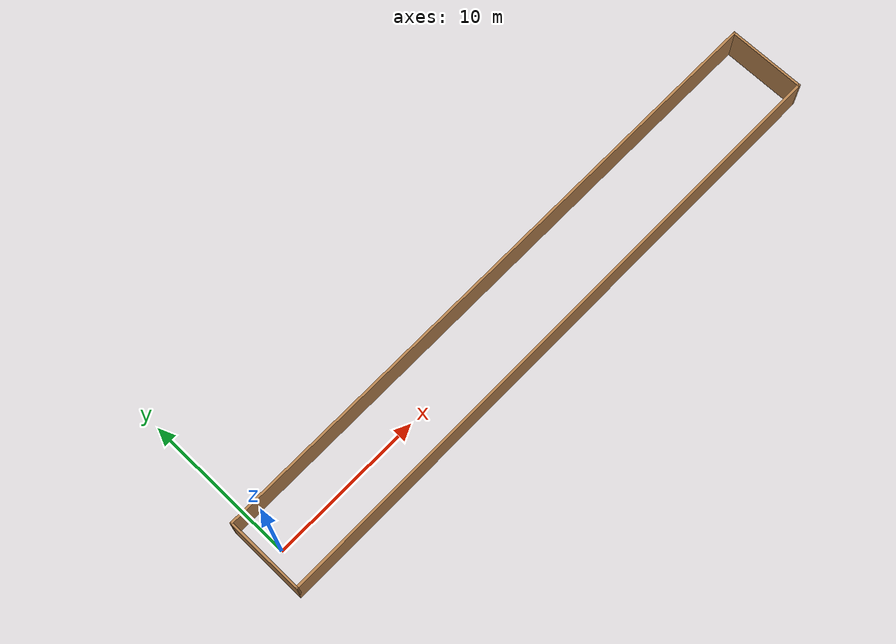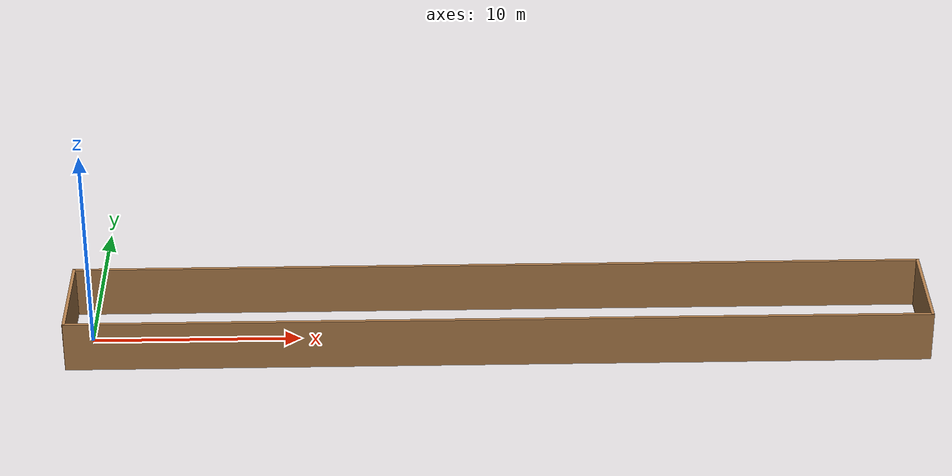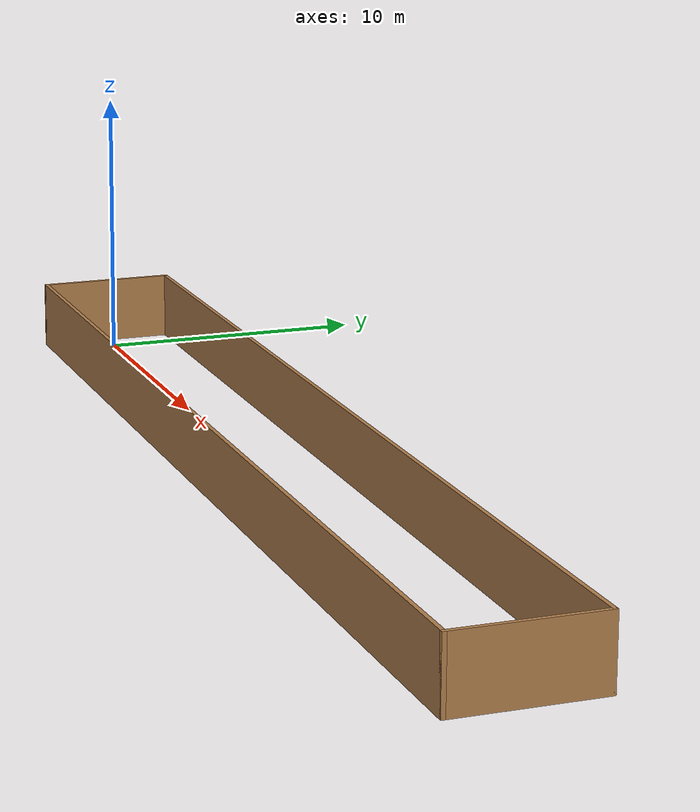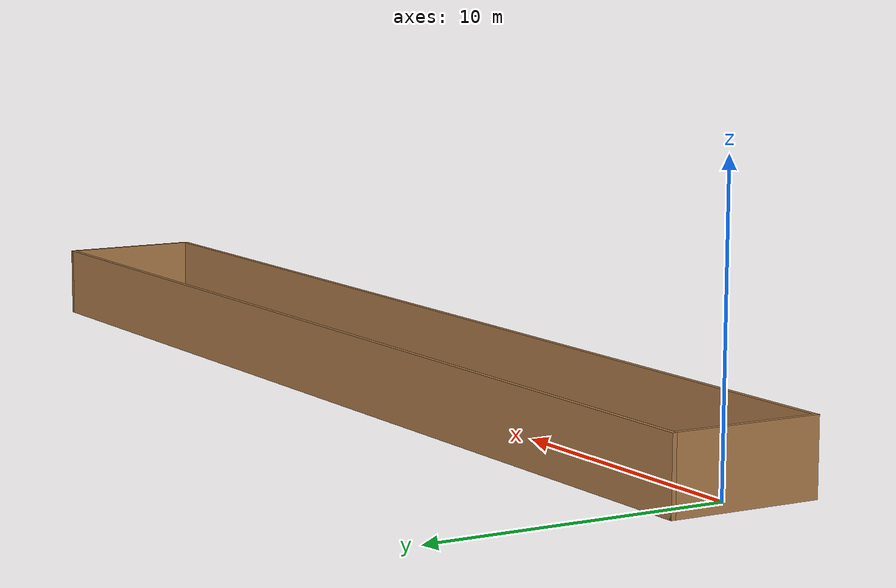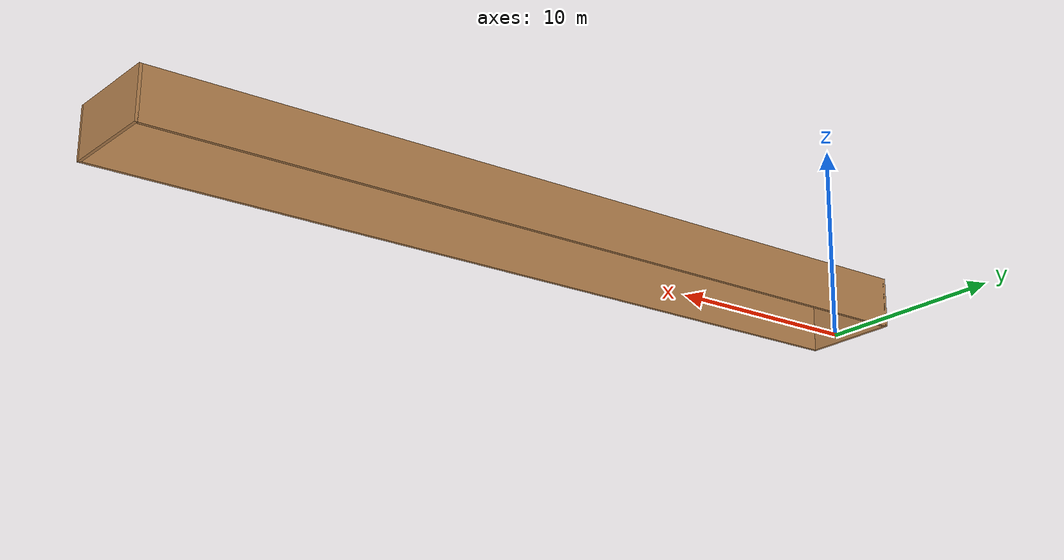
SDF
<?xml version='1.0'?>
<sdf version='1.7'>
  <model name='corridor'>
    <pose>19.5 0 0 0 -0 0</pose>
    <link name='Wall_0'>
      <collision name='Wall_0_Collision'>
        <geometry>
          <box>
            <size>41.15 0.15 2.5</size>
          </box>
        </geometry>
        <pose>0 0 1.25 0 -0 0</pose>
      </collision>
      <visual name='Wall_0_Visual'>
        <pose>0 0 1.25 0 -0 0</pose>
        <geometry>
          <box>
            <size>41.15 0.15 2.5</size>
          </box>
        </geometry>
        <material>
          <script>
            <uri>file://media/materials/scripts/gazebo.material</uri>
            <name>Gazebo/Wood</name>
          </script>
          <ambient>1 1 1 1</ambient>
        </material>
        <meta>
          <layer>0</layer>
        </meta>
      </visual>
      <pose>0 2.5 0 0 -0 0</pose>
    </link>
    <link name='Wall_2'>
      <collision name='Wall_2_Collision'>
        <geometry>
          <box>
            <size>41.15 0.15 2.5</size>
          </box>
        </geometry>
        <pose>0 0 1.25 0 -0 0</pose>
      </collision>
      <visual name='Wall_2_Visual'>
        <pose>0 0 1.25 0 -0 0</pose>
        <geometry>
          <box>
            <size>41.15 0.15 2.5</size>
          </box>
        </geometry>
        <material>
          <script>
            <uri>file://media/materials/scripts/gazebo.material</uri>
            <name>Gazebo/Wood</name>
          </script>
          <ambient>1 1 1 1</ambient>
        </material>
        <meta>
          <layer>0</layer>
        </meta>
      </visual>
      <pose>0 -2.5 0 0 -0 0</pose>
    </link>
    <link name='Wall_4'>
      <collision name='Wall_4_Collision'>
        <geometry>
          <box>
            <size>5.15 0.15 2.5</size>
          </box>
        </geometry>
        <pose>0 0 1.25 0 -0 0</pose>
      </collision>
      <visual name='Wall_4_Visual'>
        <pose>0 0 1.25 0 -0 0</pose>
        <geometry>
          <box>
            <size>5.15 0.15 2.5</size>
          </box>
        </geometry>
        <material>
          <script>
            <uri>file://media/materials/scripts/gazebo.material</uri>
            <name>Gazebo/Wood</name>
          </script>
          <ambient>1 1 1 1</ambient>
        </material>
        <meta>
          <layer>0</layer>
        </meta>
      </visual>
      <pose>-20.5 0 0 0 -0 -1.5708</pose>
    </link>
    <link name='Wall_6'>
      <collision name='Wall_6_Collision'>
        <geometry>
          <box>
            <size>5.15 0.15 2.5</size>
          </box>
        </geometry>
        <pose>0 0 1.25 0 -0 0</pose>
      </collision>
      <visual name='Wall_6_Visual'>
        <pose>0 0 1.25 0 -0 0</pose>
        <geometry>
          <box>
            <size>5.15 0.15 2.5</size>
          </box>
        </geometry>
        <material>
          <script>
            <uri>file://media/materials/scripts/gazebo.material</uri>
            <name>Gazebo/Wood</name>
          </script>
          <ambient>1 1 1 1</ambient>
        </material>
        <meta>
          <layer>0</layer>
        </meta>
      </visual>
      <pose>20.5 0 0 0 -0 -1.5708</pose>
    </link>
    <static>1</static>
  </model>
</sdf>
